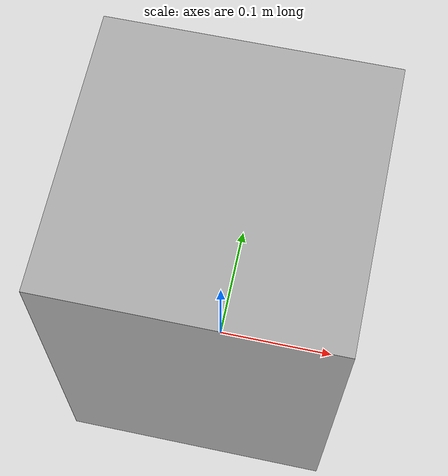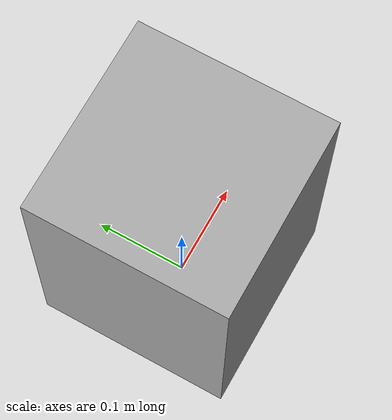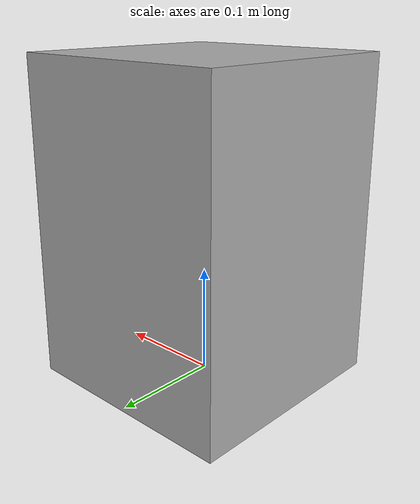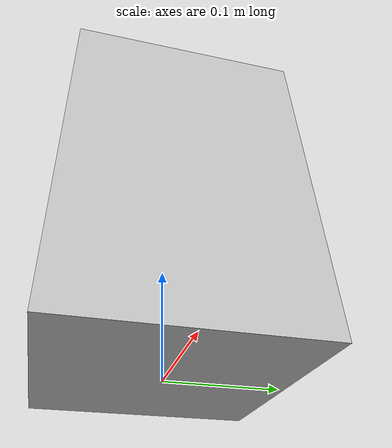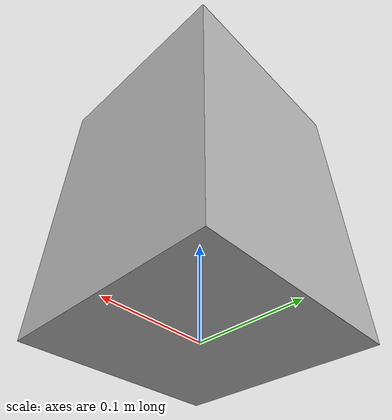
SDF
<?xml version='1.0' encoding='UTF8'?>
<sdf version="1.6">
  <model name="L2">
    <pose>0 0 0 0 0 0</pose>
    <static>true</static>
    <link name="link">
      <visual name="visual">
        <geometry>
          <mesh>
            <uri>model://rover_sim/models/landmarks/L2/meshes/mesh.dae</uri>
            <scale>0.21 0.21 0.297</scale>
          </mesh>
        </geometry>
      </visual>
      <collision name="collision">
        <geometry>
          <mesh>
            <uri>model://rover_sim/models/landmarks/L2/meshes/collision_mesh.dae</uri>
            <scale>0.21 0.21 0.297</scale>
          </mesh>
        </geometry>
      </collision>
    </link>
  </model>
</sdf>
